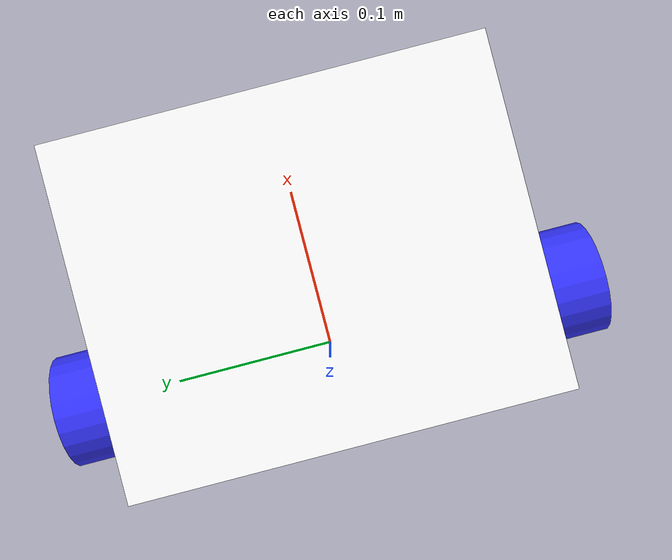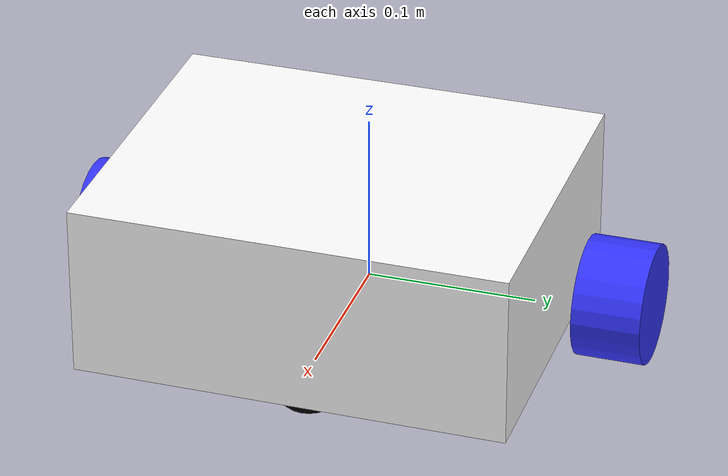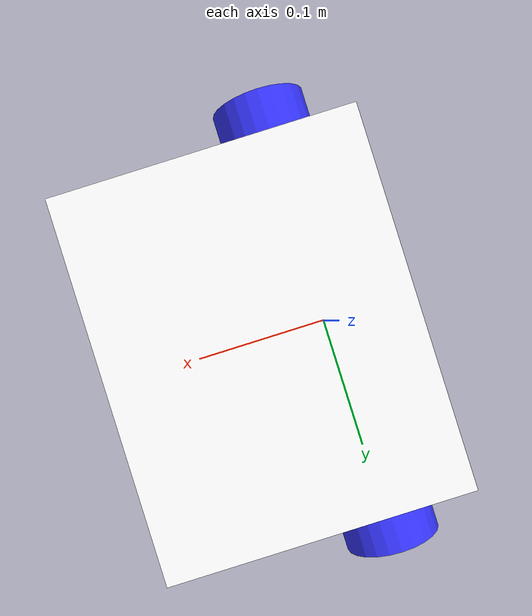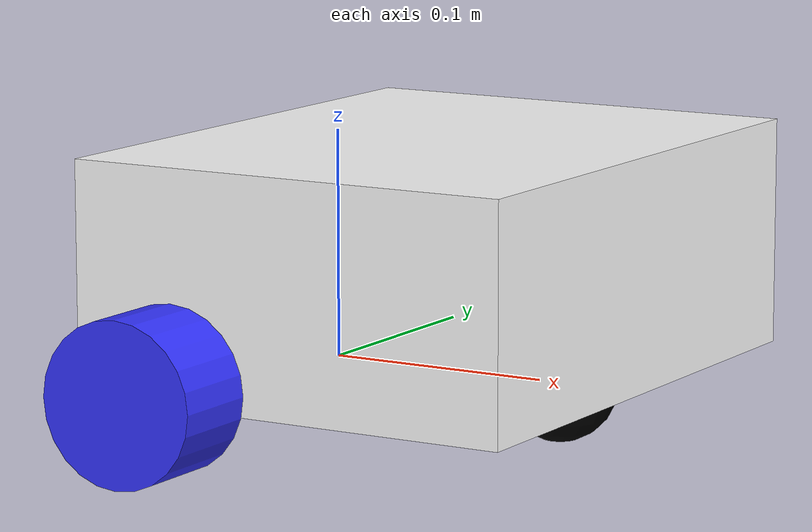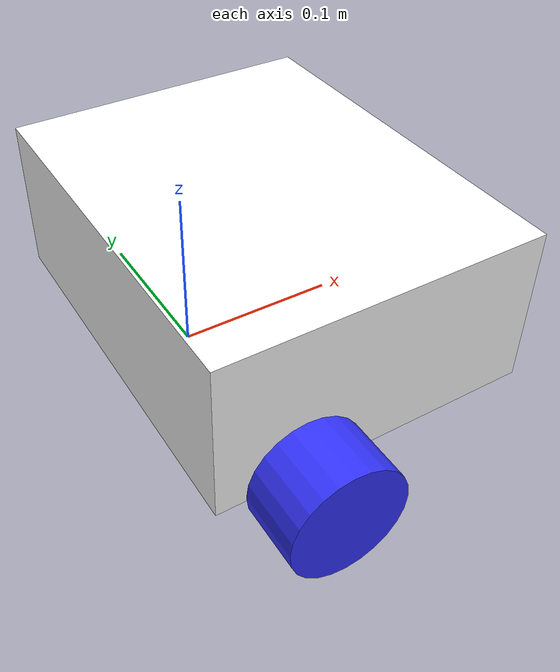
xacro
<?xml version="1.0"?>
<robot xmlns:xacro="http://www.ros.org/wiki/xacro" >

<xacro:include filename="inertial_macros.xacro"/>

<material name="white">
    <color rgba="1 1 1 1" />
</material>

<material name="orange">
    <color rgba="1 0.3 0.1 1" />
</material>

<material name="blue">
    <color rgba="0.2 0.2 1 1" />
</material>

<material name="black">
    <color rgba="0 0 0 1" />
</material>

<!--BASE LINK-->

<link name="base_link">

</link>

<!-- CHASSIS LINK-->

<joint name="chassis_joint" type="fixed">
    <parent link="base_link"/>
    <child link="chassis"/>
    <origin xyz="-0.05 0 0"/>
</joint>

<link name="chassis">
    <visual>
        <origin xyz="0.1 0 0.05" rpy="0 0 0"/>
        <geometry>
            <box size="0.2 0.25 0.1"/>
        </geometry>
        <material name="white"/>
    </visual>
    <collision>
        <origin xyz="0.1 0 0.05" rpy="0 0 0"/>
        <geometry>
            <box size="0.2 0.25 0.1"/>
        </geometry>
    </collision>
    <xacro:inertial_box mass="0.5" x="0.20" y="0.25" z="0.10">
<origin xyz="0.1 0 0.05" rpy="0 0 0"/>
    </xacro:inertial_box>
</link>

<gazebo reference="chassis">
    <material>Gazebo/White</material>
</gazebo>

<!-- LEFT WHEEL -->

<joint name="left_wheel_joint" type="continuous">
    <parent link="base_link"/>
    <child link="left_wheel"/>
    <origin xyz="0 0.15 0.01" rpy="-${pi/2} 0 0"/>
    <axis xyz="0 0 1"/>
</joint>

<link name="left_wheel">
    <visual>
        <geometry>
            <cylinder length="0.04" radius="0.035" />
        </geometry>
        <material name="blue"/>
    </visual>
    <collision>
        <geometry>
            <cylinder length="0.04" radius="0.035" />
        </geometry>
    </collision>
    <xacro:inertial_cylinder mass="0.1" length="0.04" radius="0.035">
        <origin xyz="0 0 0.01" rpy="0 0 0"/>
    </xacro:inertial_cylinder>
</link>

<gazebo reference="left_wheel">
    <material>Gazebo/Blue</material>
</gazebo>

<!-- RIGHT WHEEL -->

<joint name="right_wheel_joint" type="continuous">
    <parent link="base_link"/>
    <child link="right_wheel"/>
    <origin xyz="0 -0.15 0.01" rpy="${pi/2} 0 0"/>
    <axis xyz="0 0 -1"/>
</joint>

<link name="right_wheel">
    <visual>
        <geometry>
            <cylinder length="0.04" radius="0.035" />
        </geometry>
        <material name="blue"/>
    </visual>
    <collision>
        <geometry>
            <cylinder length="0.04" radius="0.035" />
        </geometry>
    </collision>
    <xacro:inertial_cylinder mass="0.1" length="0.04" radius="0.035">
        <origin xyz="0 0 0.01" rpy="0 0 0"/>
    </xacro:inertial_cylinder>
</link>

<gazebo reference="right_wheel">
    <material>Gazebo/Blue</material>
</gazebo>

<!-- CASTER WHEEL -->

<joint name="caster_wheel_joint" type="fixed">
    <parent link="chassis"/>
    <child link="caster_wheel"/>
    <origin xyz="0.16 0 0" rpy="0 0 0"/>
</joint>

<link name="caster_wheel">
    <visual>
        <geometry>
            <sphere radius="0.025" />
        </geometry>
        <material name="black"/>
    </visual>
     <collision>
        <geometry>
            <sphere radius="0.025" />
        </geometry>
    </collision>
        <xacro:inertial_sphere mass="0.1" radius="0.025">
        <origin xyz="0 0 0" rpy="0 0 0"/>
    </xacro:inertial_sphere>
</link>

<gazebo reference="caster_wheel">
    <material>Gazebo/Black</material>
    <mu1 value="0.001"/>
    <mu2 value="0.001"/>
</gazebo>

</robot>
